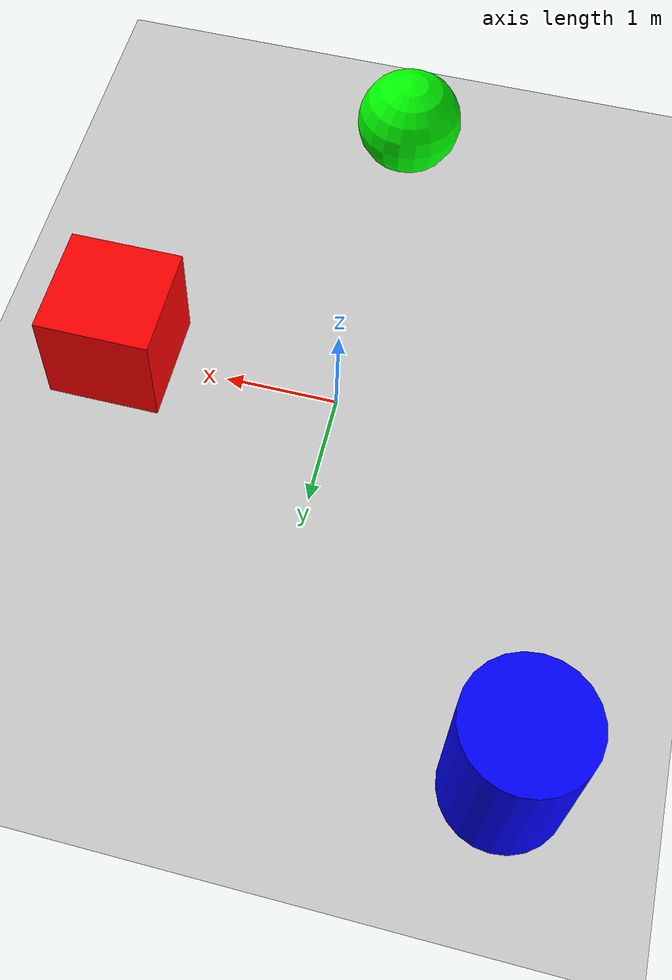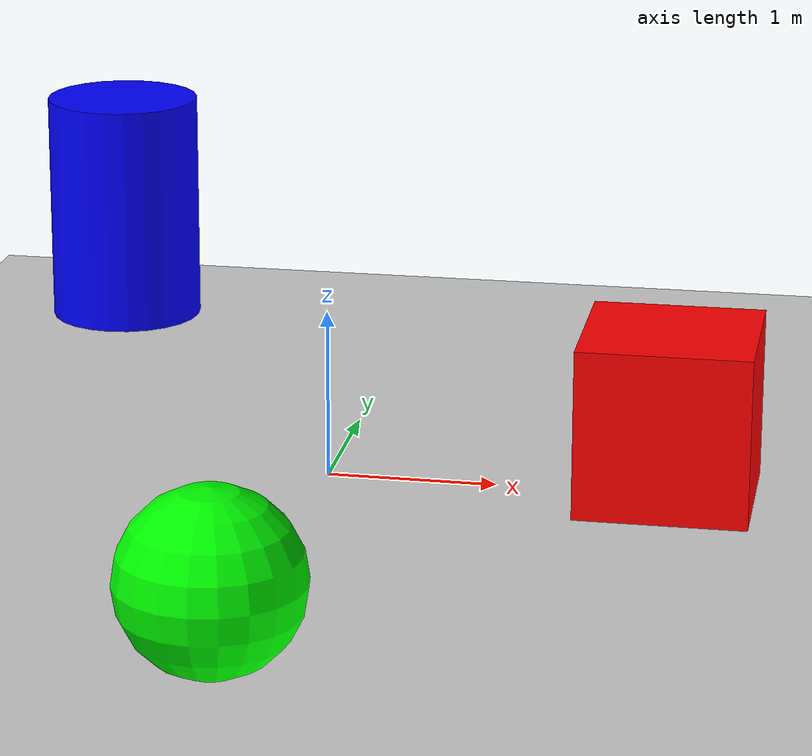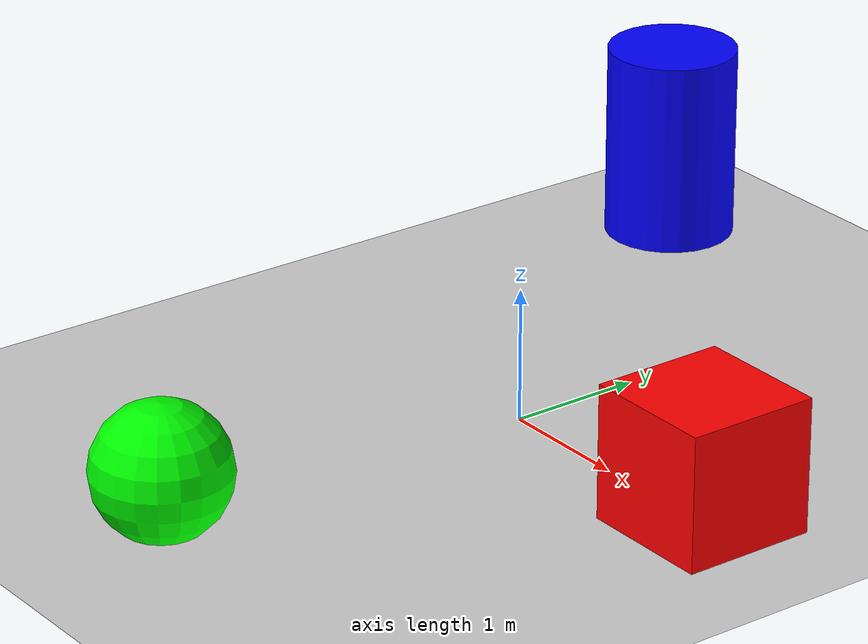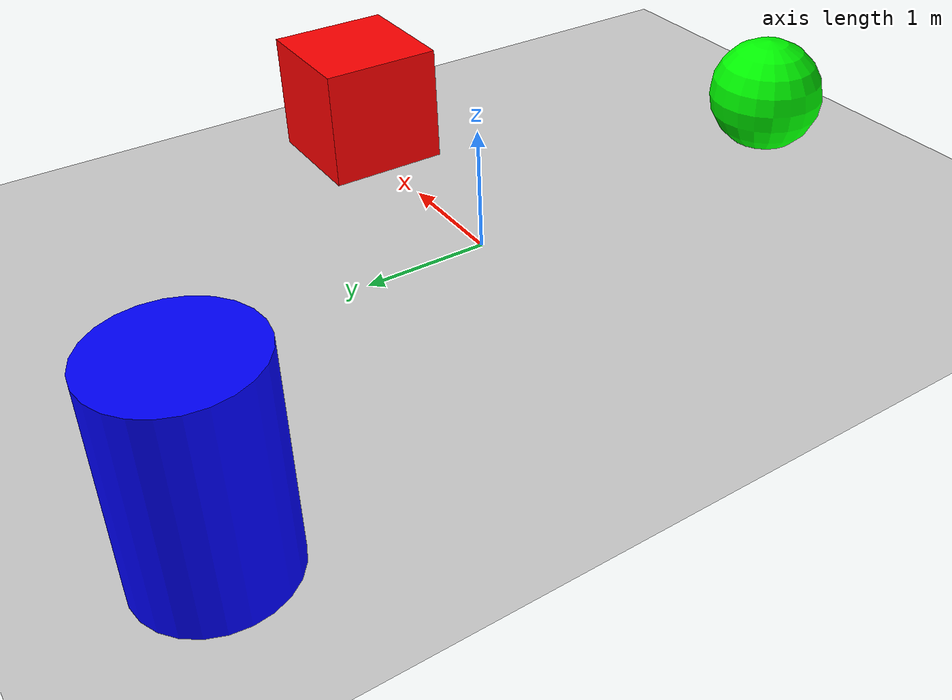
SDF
<?xml version='1.0'?>
<sdf version='1.6'>
  <world name='obstacle_course'>
    <physics type='ode' default='true'>
      <max_step_size>0.001</max_step_size>
      <real_time_factor>1.0</real_time_factor>
      <gravity>0.0 0.0 -9.8066</gravity>
    </physics>

    <scene>
      <ambient>0.4 0.4 0.4 1</ambient>
      <background>0.7 0.7 0.7 1</background>
      <shadows>true</shadows>
    </scene>

    <light type='directional' name='sun'>
      <cast_shadows>true</cast_shadows>
      <pose>0 0 10 0 0 0</pose>
      <diffuse>0.8 0.8 0.8 1</diffuse>
      <specular>0.2 0.2 0.2 1</specular>
      <direction>-0.5 0.1 -0.9</direction>
    </light>

    <!-- Ground plane -->
    <model name='ground_plane'>
      <static>true</static>
      <link name='link'>
        <collision name='collision'>
          <geometry>
            <plane>
              <normal>0 0 1</normal>
              <size>100 100</size>
            </plane>
          </geometry>
          <surface>
            <friction>
              <ode>
                <mu>100</mu>
                <mu2>50</mu2>
              </ode>
            </friction>
          </surface>
        </collision>
        <visual name='visual'>
          <cast_shadows>false</cast_shadows>
          <geometry>
            <plane>
              <normal>0 0 1</normal>
              <size>100 100</size>
            </plane>
          </geometry>
          <material>
            <script>
              <uri>file://media/materials/scripts/gazebo.material</uri>
              <name>Gazebo/Grey</name>
            </script>
          </material>
        </visual>
      </link>
    </model>

    <!-- Obstacle 1: Red box -->
    <model name='obstacle_1'>
      <static>true</static>
      <pose>2 0 0.5 0 0 0</pose>
      <link name='link'>
        <collision name='collision'>
          <geometry>
            <box>
              <size>1 1 1</size>
            </box>
          </geometry>
        </collision>
        <visual name='visual'>
          <geometry>
            <box>
              <size>1 1 1</size>
            </box>
          </geometry>
          <material>
            <ambient>1 0 0 1</ambient>
            <diffuse>1 0 0 1</diffuse>
          </material>
        </visual>
      </link>
    </model>

    <!-- Obstacle 2: Blue cylinder -->
    <model name='obstacle_2'>
      <static>true</static>
      <pose>-2 3 0.75 0 0 0</pose>
      <link name='link'>
        <collision name='collision'>
          <geometry>
            <cylinder>
              <radius>0.5</radius>
              <length>1.5</length>
            </cylinder>
          </geometry>
        </collision>
        <visual name='visual'>
          <geometry>
            <cylinder>
              <radius>0.5</radius>
              <length>1.5</length>
            </cylinder>
          </geometry>
          <material>
            <ambient>0 0 1 1</ambient>
            <diffuse>0 0 1 1</diffuse>
          </material>
        </visual>
      </link>
    </model>

    <!-- Obstacle 3: Green sphere -->
    <model name='obstacle_3'>
      <static>true</static>
      <pose>0 -3 0.5 0 0 0</pose>
      <link name='link'>
        <collision name='collision'>
          <geometry>
            <sphere>
              <radius>0.5</radius>
            </sphere>
          </geometry>
        </collision>
        <visual name='visual'>
          <geometry>
            <sphere>
              <radius>0.5</radius>
            </sphere>
          </geometry>
          <material>
            <ambient>0 1 0 1</ambient>
            <diffuse>0 1 0 1</diffuse>
          </material>
        </visual>
      </link>
    </model>
  </world>
</sdf>
